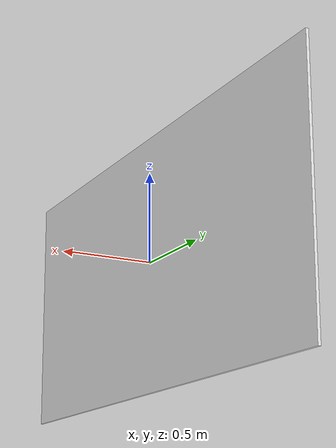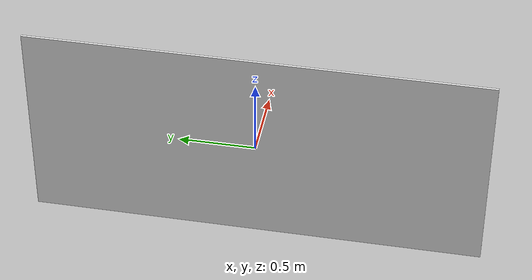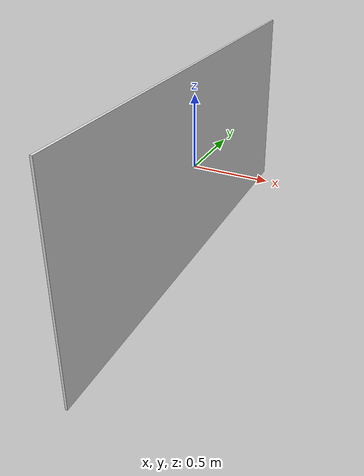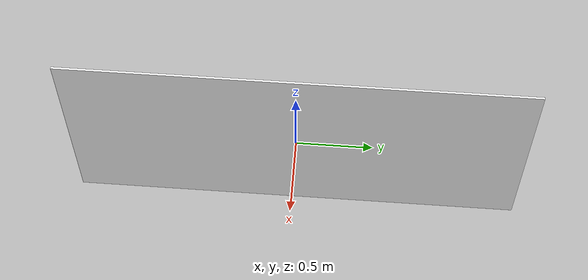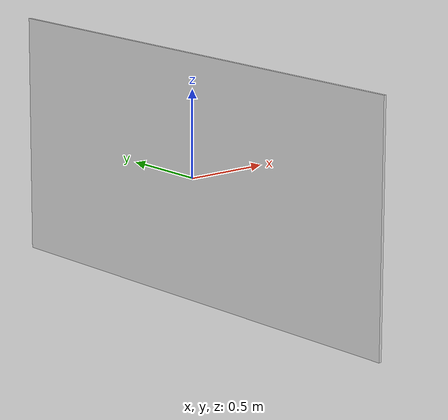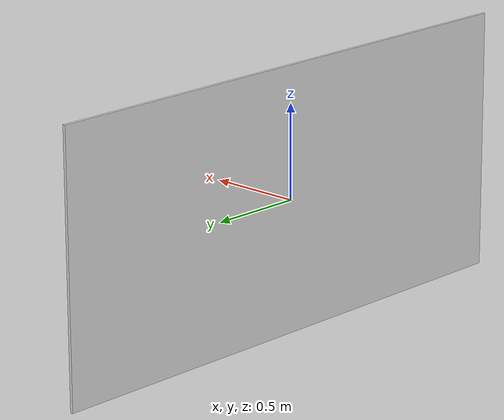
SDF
<?xml version="1.0"?>
<sdf version="1.7">

  <model name="front_wall">
    <link name="front_wall_link">
      <inertial>
        <mass>18.70</mass>
        <inertia>
          <ixx>0.79</ixx>
          <ixy>0</ixy>
          <ixz>0</ixz>
          <iyy>0.53</iyy>
          <iyz>0</iyz>
          <izz>1.2</izz>
        </inertia>
      </inertial>
      <visual name="left">
        <pose>0.0 0 0 0 0 0</pose>
        <geometry>
          <box>
            <size>0.015 3.0 1.4</size>
          </box>
        </geometry>
        <material>
          <diffuse>0.9 0.9 0.9 1.0</diffuse>
        </material>
      </visual>
      <collision name="left">
        <pose>0.0 0 0 0 0 0</pose>
        <geometry>
          <box>
            <size>0.015 3.0 1.4</size>
          </box>
        </geometry>
        <drake:proximity_properties>
          <drake:compliant_hydroelastic />
          <drake:hydroelastic_modulus>1.0e6</drake:hydroelastic_modulus>
        </drake:proximity_properties>
      </collision>
    </link>
    <frame name="front_wall_center">
      <pose relative_to="front_wall_link">0 -0.5 -0.7 0 0 0</pose>
    </frame>
  </model>
</sdf>
